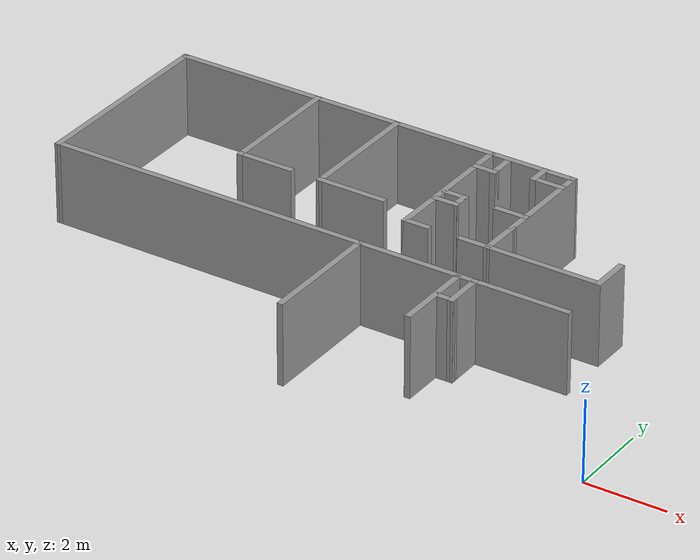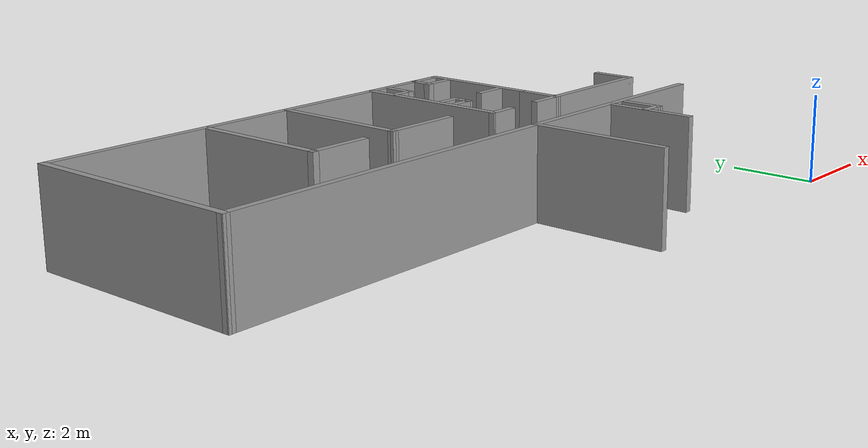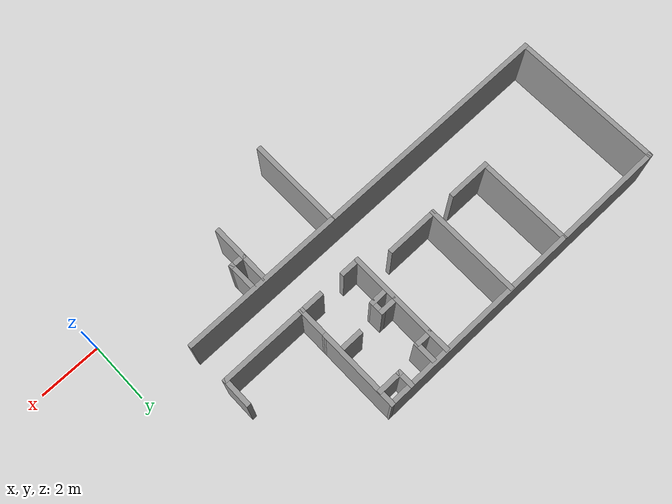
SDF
<sdf version="1.7">
 <model name="HQ">
  <link name="Wall_1">
   <pose>-9.81185 7.21089 0 0 -0 0.000157</pose>
   <visual name="Wall_1_Visual">
    <pose>0 0 1.25 0 -0 0</pose>
    <geometry><box><size>10.3981 0.15 2</size></box></geometry>
    <material>
     <script><uri>file://media/materials/scripts/gazebo.material</uri><name>Gazebo/Grey</name></script>
     <ambient>1 1 1 1</ambient>
     <shader type="pixel"/>
    </material>
    <meta><layer>0</layer></meta>
   </visual>
   <collision name="Wall_1_Collision">
    <pose>0 0 1.25 0 -0 0</pose>
    <geometry><box><size>10.3981 0.15 2</size></box></geometry>
    <surface>
     <friction>
      <ode><mu>1</mu><mu2>1</mu2><fdir1>0 0 0</fdir1><slip1>0</slip1><slip2>0</slip2></ode>
      <torsional>
       <coefficient>1</coefficient>
       <patch_radius>0</patch_radius>
       <surface_radius>0</surface_radius>
       <use_patch_radius>1</use_patch_radius>
       <ode><slip>0</slip></ode>
      </torsional>
     </friction>
     <bounce><restitution_coefficient>0</restitution_coefficient><threshold>1e+06</threshold></bounce>
     <contact>
      <collide_without_contact>0</collide_without_contact>
      <collide_without_contact_bitmask>1</collide_without_contact_bitmask>
      <collide_bitmask>1</collide_bitmask>
      <ode>
       <soft_cfm>0</soft_cfm>
       <soft_erp>0.2</soft_erp>
       <kp>1e+13</kp>
       <kd>1</kd>
       <max_vel>0.01</max_vel>
       <min_depth>0</min_depth>
      </ode>
      <bullet>
       <split_impulse>1</split_impulse>
       <split_impulse_penetration_threshold>-0.01</split_impulse_penetration_threshold>
       <soft_cfm>0</soft_cfm>
       <soft_erp>0.2</soft_erp>
       <kp>1e+13</kp>
       <kd>1</kd>
      </bullet>
     </contact>
    </surface>
   </collision>
  </link>
  <link name="Wall_100">
   <pose>-6.48912 5.25147 0 0 -0 3.14159</pose>
   <visual name="Wall_100_Visual">
    <pose>0 0 1.25 0 -0 0</pose>
    <geometry><box><size>0.657 0.15 2</size></box></geometry>
    <material>
     <script><uri>file://media/materials/scripts/gazebo.material</uri><name>Gazebo/Grey</name></script>
     <ambient>1 1 1 1</ambient>
     <shader type="pixel"/>
    </material>
    <meta><layer>0</layer></meta>
   </visual>
   <collision name="Wall_100_Collision">
    <pose>0 0 1.25 0 -0 0</pose>
    <geometry><box><size>0.657 0.15 2</size></box></geometry>
    <surface>
     <friction>
      <ode><mu>1</mu><mu2>1</mu2><fdir1>0 0 0</fdir1><slip1>0</slip1><slip2>0</slip2></ode>
      <torsional>
       <coefficient>1</coefficient>
       <patch_radius>0</patch_radius>
       <surface_radius>0</surface_radius>
       <use_patch_radius>1</use_patch_radius>
       <ode><slip>0</slip></ode>
      </torsional>
     </friction>
     <bounce><restitution_coefficient>0</restitution_coefficient><threshold>1e+06</threshold></bounce>
     <contact>
      <collide_without_contact>0</collide_without_contact>
      <collide_without_contact_bitmask>1</collide_without_contact_bitmask>
      <collide_bitmask>1</collide_bitmask>
      <ode>
       <soft_cfm>0</soft_cfm>
       <soft_erp>0.2</soft_erp>
       <kp>1e+13</kp>
       <kd>1</kd>
       <max_vel>0.01</max_vel>
       <min_depth>0</min_depth>
      </ode>
      <bullet>
       <split_impulse>1</split_impulse>
       <split_impulse_penetration_threshold>-0.01</split_impulse_penetration_threshold>
       <soft_cfm>0</soft_cfm>
       <soft_erp>0.2</soft_erp>
       <kp>1e+13</kp>
       <kd>1</kd>
      </bullet>
     </contact>
    </surface>
   </collision>
  </link>
  <link name="Wall_102">
   <pose>-6.23562 5.07647 0 0 0 -1.5708</pose>
   <visual name="Wall_102_Visual">
    <pose>0 0 1.25 0 -0 0</pose>
    <geometry><box><size>0.5 0.15 2</size></box></geometry>
    <material>
     <script><uri>file://media/materials/scripts/gazebo.material</uri><name>Gazebo/Grey</name></script>
     <ambient>1 1 1 1</ambient>
     <shader type="pixel"/>
    </material>
    <meta><layer>0</layer></meta>
   </visual>
   <collision name="Wall_102_Collision">
    <pose>0 0 1.25 0 -0 0</pose>
    <geometry><box><size>0.5 0.15 2</size></box></geometry>
    <surface>
     <friction>
      <ode><mu>1</mu><mu2>1</mu2><fdir1>0 0 0</fdir1><slip1>0</slip1><slip2>0</slip2></ode>
      <torsional>
       <coefficient>1</coefficient>
       <patch_radius>0</patch_radius>
       <surface_radius>0</surface_radius>
       <use_patch_radius>1</use_patch_radius>
       <ode><slip>0</slip></ode>
      </torsional>
     </friction>
     <bounce><restitution_coefficient>0</restitution_coefficient><threshold>1e+06</threshold></bounce>
     <contact>
      <collide_without_contact>0</collide_without_contact>
      <collide_without_contact_bitmask>1</collide_without_contact_bitmask>
      <collide_bitmask>1</collide_bitmask>
      <ode>
       <soft_cfm>0</soft_cfm>
       <soft_erp>0.2</soft_erp>
       <kp>1e+13</kp>
       <kd>1</kd>
       <max_vel>0.01</max_vel>
       <min_depth>0</min_depth>
      </ode>
      <bullet>
       <split_impulse>1</split_impulse>
       <split_impulse_penetration_threshold>-0.01</split_impulse_penetration_threshold>
       <soft_cfm>0</soft_cfm>
       <soft_erp>0.2</soft_erp>
       <kp>1e+13</kp>
       <kd>1</kd>
      </bullet>
     </contact>
    </surface>
   </collision>
  </link>
  <link name="Wall_103">
   <pose>-6.49487 4.89822 0 0 0 -3.12906</pose>
   <visual name="Wall_103_Visual">
    <pose>0 0 1.25 0 -0 0</pose>
    <geometry><box><size>0.668524 0.15 2</size></box></geometry>
    <material>
     <script><uri>file://media/materials/scripts/gazebo.material</uri><name>Gazebo/Grey</name></script>
     <ambient>1 1 1 1</ambient>
     <shader type="pixel"/>
    </material>
    <meta><layer>0</layer></meta>
   </visual>
   <collision name="Wall_103_Collision">
    <pose>0 0 1.25 0 -0 0</pose>
    <geometry><box><size>0.668524 0.15 2</size></box></geometry>
    <surface>
     <friction>
      <ode><mu>1</mu><mu2>1</mu2><fdir1>0 0 0</fdir1><slip1>0</slip1><slip2>0</slip2></ode>
      <torsional>
       <coefficient>1</coefficient>
       <patch_radius>0</patch_radius>
       <surface_radius>0</surface_radius>
       <use_patch_radius>1</use_patch_radius>
       <ode><slip>0</slip></ode>
      </torsional>
     </friction>
     <bounce><restitution_coefficient>0</restitution_coefficient><threshold>1e+06</threshold></bounce>
     <contact>
      <collide_without_contact>0</collide_without_contact>
      <collide_without_contact_bitmask>1</collide_without_contact_bitmask>
      <collide_bitmask>1</collide_bitmask>
      <ode>
       <soft_cfm>0</soft_cfm>
       <soft_erp>0.2</soft_erp>
       <kp>1e+13</kp>
       <kd>1</kd>
       <max_vel>0.01</max_vel>
       <min_depth>0</min_depth>
      </ode>
      <bullet>
       <split_impulse>1</split_impulse>
       <split_impulse_penetration_threshold>-0.01</split_impulse_penetration_threshold>
       <soft_cfm>0</soft_cfm>
       <soft_erp>0.2</soft_erp>
       <kp>1e+13</kp>
       <kd>1</kd>
      </bullet>
     </contact>
    </surface>
   </collision>
  </link>
  <link name="Wall_105">
   <pose>-6.52412 6.55097 0 0 -0 0</pose>
   <visual name="Wall_105_Visual">
    <pose>0 0 1.25 0 -0 0</pose>
    <geometry><box><size>0.61 0.15 2</size></box></geometry>
    <material>
     <script><uri>file://media/materials/scripts/gazebo.material</uri><name>Gazebo/Grey</name></script>
     <ambient>1 1 1 1</ambient>
     <shader type="pixel"/>
    </material>
    <meta><layer>0</layer></meta>
   </visual>
   <collision name="Wall_105_Collision">
    <pose>0 0 1.25 0 -0 0</pose>
    <geometry><box><size>0.61 0.15 2</size></box></geometry>
    <surface>
     <friction>
      <ode><mu>1</mu><mu2>1</mu2><fdir1>0 0 0</fdir1><slip1>0</slip1><slip2>0</slip2></ode>
      <torsional>
       <coefficient>1</coefficient>
       <patch_radius>0</patch_radius>
       <surface_radius>0</surface_radius>
       <use_patch_radius>1</use_patch_radius>
       <ode><slip>0</slip></ode>
      </torsional>
     </friction>
     <bounce><restitution_coefficient>0</restitution_coefficient><threshold>1e+06</threshold></bounce>
     <contact>
      <collide_without_contact>0</collide_without_contact>
      <collide_without_contact_bitmask>1</collide_without_contact_bitmask>
      <collide_bitmask>1</collide_bitmask>
      <ode>
       <soft_cfm>0</soft_cfm>
       <soft_erp>0.2</soft_erp>
       <kp>1e+13</kp>
       <kd>1</kd>
       <max_vel>0.01</max_vel>
       <min_depth>0</min_depth>
      </ode>
      <bullet>
       <split_impulse>1</split_impulse>
       <split_impulse_penetration_threshold>-0.01</split_impulse_penetration_threshold>
       <soft_cfm>0</soft_cfm>
       <soft_erp>0.2</soft_erp>
       <kp>1e+13</kp>
       <kd>1</kd>
      </bullet>
     </contact>
    </surface>
   </collision>
  </link>
  <link name="Wall_106">
   <pose>-6.29412 6.83847 0 0 -0 1.5708</pose>
   <visual name="Wall_106_Visual">
    <pose>0 0 1.25 0 -0 0</pose>
    <geometry><box><size>0.725115 0.15 2</size></box></geometry>
    <material>
     <script><uri>file://media/materials/scripts/gazebo.material</uri><name>Gazebo/Grey</name></script>
     <ambient>1 1 1 1</ambient>
     <shader type="pixel"/>
    </material>
    <meta><layer>0</layer></meta>
   </visual>
   <collision name="Wall_106_Collision">
    <pose>0 0 1.25 0 -0 0</pose>
    <geometry><box><size>0.725115 0.15 2</size></box></geometry>
    <surface>
     <friction>
      <ode><mu>1</mu><mu2>1</mu2><fdir1>0 0 0</fdir1><slip1>0</slip1><slip2>0</slip2></ode>
      <torsional>
       <coefficient>1</coefficient>
       <patch_radius>0</patch_radius>
       <surface_radius>0</surface_radius>
       <use_patch_radius>1</use_patch_radius>
       <ode><slip>0</slip></ode>
      </torsional>
     </friction>
     <bounce><restitution_coefficient>0</restitution_coefficient><threshold>1e+06</threshold></bounce>
     <contact>
      <collide_without_contact>0</collide_without_contact>
      <collide_without_contact_bitmask>1</collide_without_contact_bitmask>
      <collide_bitmask>1</collide_bitmask>
      <ode>
       <soft_cfm>0</soft_cfm>
       <soft_erp>0.2</soft_erp>
       <kp>1e+13</kp>
       <kd>1</kd>
       <max_vel>0.01</max_vel>
       <min_depth>0</min_depth>
      </ode>
      <bullet>
       <split_impulse>1</split_impulse>
       <split_impulse_penetration_threshold>-0.01</split_impulse_penetration_threshold>
       <soft_cfm>0</soft_cfm>
       <soft_erp>0.2</soft_erp>
       <kp>1e+13</kp>
       <kd>1</kd>
      </bullet>
     </contact>
    </surface>
   </collision>
  </link>
  <link name="Wall_108">
   <pose>-9.25537 5.68847 0 0 0 -1.57464</pose>
   <visual name="Wall_108_Visual">
    <pose>0 0 1.25 0 -0 0</pose>
    <geometry><box><size>3.14002 0.15 2</size></box></geometry>
    <material>
     <script><uri>file://media/materials/scripts/gazebo.material</uri><name>Gazebo/Grey</name></script>
     <ambient>1 1 1 1</ambient>
     <shader type="pixel"/>
    </material>
    <meta><layer>0</layer></meta>
   </visual>
   <collision name="Wall_108_Collision">
    <pose>0 0 1.25 0 -0 0</pose>
    <geometry><box><size>3.14002 0.15 2</size></box></geometry>
    <surface>
     <friction>
      <ode><mu>1</mu><mu2>1</mu2><fdir1>0 0 0</fdir1><slip1>0</slip1><slip2>0</slip2></ode>
      <torsional>
       <coefficient>1</coefficient>
       <patch_radius>0</patch_radius>
       <surface_radius>0</surface_radius>
       <use_patch_radius>1</use_patch_radius>
       <ode><slip>0</slip></ode>
      </torsional>
     </friction>
     <bounce><restitution_coefficient>0</restitution_coefficient><threshold>1e+06</threshold></bounce>
     <contact>
      <collide_without_contact>0</collide_without_contact>
      <collide_without_contact_bitmask>1</collide_without_contact_bitmask>
      <collide_bitmask>1</collide_bitmask>
      <ode>
       <soft_cfm>0</soft_cfm>
       <soft_erp>0.2</soft_erp>
       <kp>1e+13</kp>
       <kd>1</kd>
       <max_vel>0.01</max_vel>
       <min_depth>0</min_depth>
      </ode>
      <bullet>
       <split_impulse>1</split_impulse>
       <split_impulse_penetration_threshold>-0.01</split_impulse_penetration_threshold>
       <soft_cfm>0</soft_cfm>
       <soft_erp>0.2</soft_erp>
       <kp>1e+13</kp>
       <kd>1</kd>
      </bullet>
     </contact>
    </surface>
   </collision>
  </link>
  <link name="Wall_109">
   <pose>-8.46112 4.19347 0 0 -0 0</pose>
   <visual name="Wall_109_Visual">
    <pose>0 0 1.25 0 -0 0</pose>
    <geometry><box><size>1.75 0.15 2</size></box></geometry>
    <material>
     <script><uri>file://media/materials/scripts/gazebo.material</uri><name>Gazebo/Grey</name></script>
     <ambient>1 1 1 1</ambient>
     <shader type="pixel"/>
    </material>
    <meta><layer>0</layer></meta>
   </visual>
   <collision name="Wall_109_Collision">
    <pose>0 0 1.25 0 -0 0</pose>
    <geometry><box><size>1.75 0.15 2</size></box></geometry>
    <surface>
     <friction>
      <ode><mu>1</mu><mu2>1</mu2><fdir1>0 0 0</fdir1><slip1>0</slip1><slip2>0</slip2></ode>
      <torsional>
       <coefficient>1</coefficient>
       <patch_radius>0</patch_radius>
       <surface_radius>0</surface_radius>
       <use_patch_radius>1</use_patch_radius>
       <ode><slip>0</slip></ode>
      </torsional>
     </friction>
     <bounce><restitution_coefficient>0</restitution_coefficient><threshold>1e+06</threshold></bounce>
     <contact>
      <collide_without_contact>0</collide_without_contact>
      <collide_without_contact_bitmask>1</collide_without_contact_bitmask>
      <collide_bitmask>1</collide_bitmask>
      <ode>
       <soft_cfm>0</soft_cfm>
       <soft_erp>0.2</soft_erp>
       <kp>1e+13</kp>
       <kd>1</kd>
       <max_vel>0.01</max_vel>
       <min_depth>0</min_depth>
      </ode>
      <bullet>
       <split_impulse>1</split_impulse>
       <split_impulse_penetration_threshold>-0.01</split_impulse_penetration_threshold>
       <soft_cfm>0</soft_cfm>
       <soft_erp>0.2</soft_erp>
       <kp>1e+13</kp>
       <kd>1</kd>
      </bullet>
     </contact>
    </surface>
   </collision>
  </link>
  <link name="Wall_113">
   <pose>-10.7101 4.19347 0 0 -0 3.14159</pose>
   <visual name="Wall_113_Visual">
    <pose>0 0 1.25 0 -0 0</pose>
    <geometry><box><size>1.43805 0.15 2</size></box></geometry>
    <material>
     <script><uri>file://media/materials/scripts/gazebo.material</uri><name>Gazebo/Grey</name></script>
     <ambient>1 1 1 1</ambient>
     <shader type="pixel"/>
    </material>
    <meta><layer>0</layer></meta>
   </visual>
   <collision name="Wall_113_Collision">
    <pose>0 0 1.25 0 -0 0</pose>
    <geometry><box><size>1.43805 0.15 2</size></box></geometry>
    <surface>
     <friction>
      <ode><mu>1</mu><mu2>1</mu2><fdir1>0 0 0</fdir1><slip1>0</slip1><slip2>0</slip2></ode>
      <torsional>
       <coefficient>1</coefficient>
       <patch_radius>0</patch_radius>
       <surface_radius>0</surface_radius>
       <use_patch_radius>1</use_patch_radius>
       <ode><slip>0</slip></ode>
      </torsional>
     </friction>
     <bounce><restitution_coefficient>0</restitution_coefficient><threshold>1e+06</threshold></bounce>
     <contact>
      <collide_without_contact>0</collide_without_contact>
      <collide_without_contact_bitmask>1</collide_without_contact_bitmask>
      <collide_bitmask>1</collide_bitmask>
      <ode>
       <soft_cfm>0</soft_cfm>
       <soft_erp>0.2</soft_erp>
       <kp>1e+13</kp>
       <kd>1</kd>
       <max_vel>0.01</max_vel>
       <min_depth>0</min_depth>
      </ode>
      <bullet>
       <split_impulse>1</split_impulse>
       <split_impulse_penetration_threshold>-0.01</split_impulse_penetration_threshold>
       <soft_cfm>0</soft_cfm>
       <soft_erp>0.2</soft_erp>
       <kp>1e+13</kp>
       <kd>1</kd>
      </bullet>
     </contact>
    </surface>
   </collision>
  </link>
  <link name="Wall_114">
   <pose>-11.3541 5.69422 0 0 -0 1.5708</pose>
   <visual name="Wall_114_Visual">
    <pose>0 0 1.25 0 -0 0</pose>
    <geometry><box><size>3.1515 0.15 2</size></box></geometry>
    <material>
     <script><uri>file://media/materials/scripts/gazebo.material</uri><name>Gazebo/Grey</name></script>
     <ambient>1 1 1 1</ambient>
     <shader type="pixel"/>
    </material>
    <meta><layer>0</layer></meta>
   </visual>
   <collision name="Wall_114_Collision">
    <pose>0 0 1.25 0 -0 0</pose>
    <geometry><box><size>3.1515 0.15 2</size></box></geometry>
    <surface>
     <friction>
      <ode><mu>1</mu><mu2>1</mu2><fdir1>0 0 0</fdir1><slip1>0</slip1><slip2>0</slip2></ode>
      <torsional>
       <coefficient>1</coefficient>
       <patch_radius>0</patch_radius>
       <surface_radius>0</surface_radius>
       <use_patch_radius>1</use_patch_radius>
       <ode><slip>0</slip></ode>
      </torsional>
     </friction>
     <bounce><restitution_coefficient>0</restitution_coefficient><threshold>1e+06</threshold></bounce>
     <contact>
      <collide_without_contact>0</collide_without_contact>
      <collide_without_contact_bitmask>1</collide_without_contact_bitmask>
      <collide_bitmask>1</collide_bitmask>
      <ode>
       <soft_cfm>0</soft_cfm>
       <soft_erp>0.2</soft_erp>
       <kp>1e+13</kp>
       <kd>1</kd>
       <max_vel>0.01</max_vel>
       <min_depth>0</min_depth>
      </ode>
      <bullet>
       <split_impulse>1</split_impulse>
       <split_impulse_penetration_threshold>-0.01</split_impulse_penetration_threshold>
       <soft_cfm>0</soft_cfm>
       <soft_erp>0.2</soft_erp>
       <kp>1e+13</kp>
       <kd>1</kd>
      </bullet>
     </contact>
    </surface>
   </collision>
  </link>
  <link name="Wall_237">
   <pose>-5.40371 6.99084 0 0 0 -1.5708</pose>
   <visual name="Wall_237_Visual">
    <pose>0 0 1.25 0 -0 0</pose>
    <geometry><box><size>0.584783 0.15 2</size></box></geometry>
    <material>
     <script><uri>file://media/materials/scripts/gazebo.material</uri><name>Gazebo/Grey</name></script>
     <ambient>1 1 1 1</ambient>
     <shader type="pixel"/>
    </material>
    <meta><layer>0</layer></meta>
   </visual>
   <collision name="Wall_237_Collision">
    <pose>0 0 1.25 0 -0 0</pose>
    <geometry><box><size>0.584783 0.15 2</size></box></geometry>
    <surface>
     <friction>
      <ode><mu>1</mu><mu2>1</mu2><fdir1>0 0 0</fdir1><slip1>0</slip1><slip2>0</slip2></ode>
      <torsional>
       <coefficient>1</coefficient>
       <patch_radius>0</patch_radius>
       <surface_radius>0</surface_radius>
       <use_patch_radius>1</use_patch_radius>
       <ode><slip>0</slip></ode>
      </torsional>
     </friction>
     <bounce><restitution_coefficient>0</restitution_coefficient><threshold>1e+06</threshold></bounce>
     <contact>
      <collide_without_contact>0</collide_without_contact>
      <collide_without_contact_bitmask>1</collide_without_contact_bitmask>
      <collide_bitmask>1</collide_bitmask>
      <ode>
       <soft_cfm>0</soft_cfm>
       <soft_erp>0.2</soft_erp>
       <kp>1e+13</kp>
       <kd>1</kd>
       <max_vel>0.01</max_vel>
       <min_depth>0</min_depth>
      </ode>
      <bullet>
       <split_impulse>1</split_impulse>
       <split_impulse_penetration_threshold>-0.01</split_impulse_penetration_threshold>
       <soft_cfm>0</soft_cfm>
       <soft_erp>0.2</soft_erp>
       <kp>1e+13</kp>
       <kd>1</kd>
      </bullet>
     </contact>
    </surface>
   </collision>
  </link>
  <link name="Wall_238">
   <pose>-5.05589 6.77345 0 0 -0 0</pose>
   <visual name="Wall_238_Visual">
    <pose>0 0 1.25 0 -0 0</pose>
    <geometry><box><size>0.84587 0.15 2</size></box></geometry>
    <material>
     <script><uri>file://media/materials/scripts/gazebo.material</uri><name>Gazebo/Grey</name></script>
     <ambient>1 1 1 1</ambient>
     <shader type="pixel"/>
    </material>
    <meta><layer>0</layer></meta>
   </visual>
   <collision name="Wall_238_Collision">
    <pose>0 0 1.25 0 -0 0</pose>
    <geometry><box><size>0.84587 0.15 2</size></box></geometry>
    <surface>
     <friction>
      <ode><mu>1</mu><mu2>1</mu2><fdir1>0 0 0</fdir1><slip1>0</slip1><slip2>0</slip2></ode>
      <torsional>
       <coefficient>1</coefficient>
       <patch_radius>0</patch_radius>
       <surface_radius>0</surface_radius>
       <use_patch_radius>1</use_patch_radius>
       <ode><slip>0</slip></ode>
      </torsional>
     </friction>
     <bounce><restitution_coefficient>0</restitution_coefficient><threshold>1e+06</threshold></bounce>
     <contact>
      <collide_without_contact>0</collide_without_contact>
      <collide_without_contact_bitmask>1</collide_without_contact_bitmask>
      <collide_bitmask>1</collide_bitmask>
      <ode>
       <soft_cfm>0</soft_cfm>
       <soft_erp>0.2</soft_erp>
       <kp>1e+13</kp>
       <kd>1</kd>
       <max_vel>0.01</max_vel>
       <min_depth>0</min_depth>
      </ode>
      <bullet>
       <split_impulse>1</split_impulse>
       <split_impulse_penetration_threshold>-0.01</split_impulse_penetration_threshold>
       <soft_cfm>0</soft_cfm>
       <soft_erp>0.2</soft_erp>
       <kp>1e+13</kp>
       <kd>1</kd>
      </bullet>
     </contact>
    </surface>
   </collision>
  </link>
  <link name="Wall_3">
   <pose>-4.68613 5.95229 0 0 0 -1.56947</pose>
   <visual name="Wall_3_Visual">
    <pose>0 0 1.25 0 -0 0</pose>
    <geometry><box><size>2.66886 0.15 2</size></box></geometry>
    <material>
     <script><uri>file://media/materials/scripts/gazebo.material</uri><name>Gazebo/Grey</name></script>
     <ambient>1 1 1 1</ambient>
     <shader type="pixel"/>
    </material>
    <meta><layer>0</layer></meta>
   </visual>
   <collision name="Wall_3_Collision">
    <pose>0 0 1.25 0 -0 0</pose>
    <geometry><box><size>2.66886 0.15 2</size></box></geometry>
    <surface>
     <friction>
      <ode><mu>1</mu><mu2>1</mu2><fdir1>0 0 0</fdir1><slip1>0</slip1><slip2>0</slip2></ode>
      <torsional>
       <coefficient>1</coefficient>
       <patch_radius>0</patch_radius>
       <surface_radius>0</surface_radius>
       <use_patch_radius>1</use_patch_radius>
       <ode><slip>0</slip></ode>
      </torsional>
     </friction>
     <bounce><restitution_coefficient>0</restitution_coefficient><threshold>1e+06</threshold></bounce>
     <contact>
      <collide_without_contact>0</collide_without_contact>
      <collide_without_contact_bitmask>1</collide_without_contact_bitmask>
      <collide_bitmask>1</collide_bitmask>
      <ode>
       <soft_cfm>0</soft_cfm>
       <soft_erp>0.2</soft_erp>
       <kp>1e+13</kp>
       <kd>1</kd>
       <max_vel>0.01</max_vel>
       <min_depth>0</min_depth>
      </ode>
      <bullet>
       <split_impulse>1</split_impulse>
       <split_impulse_penetration_threshold>-0.01</split_impulse_penetration_threshold>
       <soft_cfm>0</soft_cfm>
       <soft_erp>0.2</soft_erp>
       <kp>1e+13</kp>
       <kd>1</kd>
      </bullet>
     </contact>
    </surface>
   </collision>
  </link>
  <link name="Wall_38">
   <pose>-14.9601 4.79068 0 0 -0 1.5708</pose>
   <visual name="Wall_38_Visual">
    <pose>0 0 1.25 0 -0 0</pose>
    <geometry><box><size>4.97729 0.15 2</size></box></geometry>
    <material>
     <script><uri>file://media/materials/scripts/gazebo.material</uri><name>Gazebo/Grey</name></script>
     <ambient>1 1 1 1</ambient>
     <shader type="pixel"/>
    </material>
    <meta><layer>0</layer></meta>
   </visual>
   <collision name="Wall_38_Collision">
    <pose>0 0 1.25 0 -0 0</pose>
    <geometry><box><size>4.97729 0.15 2</size></box></geometry>
    <surface>
     <friction>
      <ode><mu>1</mu><mu2>1</mu2><fdir1>0 0 0</fdir1><slip1>0</slip1><slip2>0</slip2></ode>
      <torsional>
       <coefficient>1</coefficient>
       <patch_radius>0</patch_radius>
       <surface_radius>0</surface_radius>
       <use_patch_radius>1</use_patch_radius>
       <ode><slip>0</slip></ode>
      </torsional>
     </friction>
     <bounce><restitution_coefficient>0</restitution_coefficient><threshold>1e+06</threshold></bounce>
     <contact>
      <collide_without_contact>0</collide_without_contact>
      <collide_without_contact_bitmask>1</collide_without_contact_bitmask>
      <collide_bitmask>1</collide_bitmask>
      <ode>
       <soft_cfm>0</soft_cfm>
       <soft_erp>0.2</soft_erp>
       <kp>1e+13</kp>
       <kd>1</kd>
       <max_vel>0.01</max_vel>
       <min_depth>0</min_depth>
      </ode>
      <bullet>
       <split_impulse>1</split_impulse>
       <split_impulse_penetration_threshold>-0.01</split_impulse_penetration_threshold>
       <soft_cfm>0</soft_cfm>
       <soft_erp>0.2</soft_erp>
       <kp>1e+13</kp>
       <kd>1</kd>
      </bullet>
     </contact>
    </surface>
   </collision>
  </link>
  <link name="Wall_40">
   <pose>-8.43119 2.39 0 0 -0 0.001983</pose>
   <visual name="Wall_40_Visual">
    <pose>0 0 1.25 0 -0 0</pose>
    <geometry><box><size>13.208 0.15 2</size></box></geometry>
    <material>
     <script><uri>file://media/materials/scripts/gazebo.material</uri><name>Gazebo/Grey</name></script>
     <ambient>1 1 1 1</ambient>
     <shader type="pixel"/>
    </material>
    <meta><layer>0</layer></meta>
   </visual>
   <collision name="Wall_40_Collision">
    <pose>0 0 1.25 0 -0 0</pose>
    <geometry><box><size>13.208 0.15 2</size></box></geometry>
    <surface>
     <friction>
      <ode><mu>1</mu><mu2>1</mu2><fdir1>0 0 0</fdir1><slip1>0</slip1><slip2>0</slip2></ode>
      <torsional>
       <coefficient>1</coefficient>
       <patch_radius>0</patch_radius>
       <surface_radius>0</surface_radius>
       <use_patch_radius>1</use_patch_radius>
       <ode><slip>0</slip></ode>
      </torsional>
     </friction>
     <bounce><restitution_coefficient>0</restitution_coefficient><threshold>1e+06</threshold></bounce>
     <contact>
      <collide_without_contact>0</collide_without_contact>
      <collide_without_contact_bitmask>1</collide_without_contact_bitmask>
      <collide_bitmask>1</collide_bitmask>
      <ode>
       <soft_cfm>0</soft_cfm>
       <soft_erp>0.2</soft_erp>
       <kp>1e+13</kp>
       <kd>1</kd>
       <max_vel>0.01</max_vel>
       <min_depth>0</min_depth>
      </ode>
      <bullet>
       <split_impulse>1</split_impulse>
       <split_impulse_penetration_threshold>-0.01</split_impulse_penetration_threshold>
       <soft_cfm>0</soft_cfm>
       <soft_erp>0.2</soft_erp>
       <kp>1e+13</kp>
       <kd>1</kd>
      </bullet>
     </contact>
    </surface>
   </collision>
  </link>
  <link name="Wall_62">
   <pose>-4.56884 1.40712 0 0 -0 1.5708</pose>
   <visual name="Wall_62_Visual">
    <pose>0 0 1.25 0 -0 0</pose>
    <geometry><box><size>2 0.15 2</size></box></geometry>
    <material>
     <script><uri>file://media/materials/scripts/gazebo.material</uri><name>Gazebo/Grey</name></script>
     <ambient>1 1 1 1</ambient>
     <shader type="pixel"/>
    </material>
    <meta><layer>0</layer></meta>
   </visual>
   <collision name="Wall_62_Collision">
    <pose>0 0 1.25 0 -0 0</pose>
    <geometry><box><size>2 0.15 2</size></box></geometry>
    <surface>
     <friction>
      <ode><mu>1</mu><mu2>1</mu2><fdir1>0 0 0</fdir1><slip1>0</slip1><slip2>0</slip2></ode>
      <torsional>
       <coefficient>1</coefficient>
       <patch_radius>0</patch_radius>
       <surface_radius>0</surface_radius>
       <use_patch_radius>1</use_patch_radius>
       <ode><slip>0</slip></ode>
      </torsional>
     </friction>
     <bounce><restitution_coefficient>0</restitution_coefficient><threshold>1e+06</threshold></bounce>
     <contact>
      <collide_without_contact>0</collide_without_contact>
      <collide_without_contact_bitmask>1</collide_without_contact_bitmask>
      <collide_bitmask>1</collide_bitmask>
      <ode>
       <soft_cfm>0</soft_cfm>
       <soft_erp>0.2</soft_erp>
       <kp>1e+13</kp>
       <kd>1</kd>
       <max_vel>0.01</max_vel>
       <min_depth>0</min_depth>
      </ode>
      <bullet>
       <split_impulse>1</split_impulse>
       <split_impulse_penetration_threshold>-0.01</split_impulse_penetration_threshold>
       <soft_cfm>0</soft_cfm>
       <soft_erp>0.2</soft_erp>
       <kp>1e+13</kp>
       <kd>1</kd>
      </bullet>
     </contact>
    </surface>
   </collision>
  </link>
  <link name="Wall_65">
   <pose>-4.16449 1.93864 0 0 0 -1.56109</pose>
   <visual name="Wall_65_Visual">
    <pose>0 0 1.25 0 -0 0</pose>
    <geometry><box><size>1.04582 0.15 2</size></box></geometry>
    <material>
     <script><uri>file://media/materials/scripts/gazebo.material</uri><name>Gazebo/Grey</name></script>
     <ambient>1 1 1 1</ambient>
     <shader type="pixel"/>
    </material>
    <meta><layer>0</layer></meta>
   </visual>
   <collision name="Wall_65_Collision">
    <pose>0 0 1.25 0 -0 0</pose>
    <geometry><box><size>1.04582 0.15 2</size></box></geometry>
    <surface>
     <friction>
      <ode><mu>1</mu><mu2>1</mu2><fdir1>0 0 0</fdir1><slip1>0</slip1><slip2>0</slip2></ode>
      <torsional>
       <coefficient>1</coefficient>
       <patch_radius>0</patch_radius>
       <surface_radius>0</surface_radius>
       <use_patch_radius>1</use_patch_radius>
       <ode><slip>0</slip></ode>
      </torsional>
     </friction>
     <bounce><restitution_coefficient>0</restitution_coefficient><threshold>1e+06</threshold></bounce>
     <contact>
      <collide_without_contact>0</collide_without_contact>
      <collide_without_contact_bitmask>1</collide_without_contact_bitmask>
      <collide_bitmask>1</collide_bitmask>
      <ode>
       <soft_cfm>0</soft_cfm>
       <soft_erp>0.2</soft_erp>
       <kp>1e+13</kp>
       <kd>1</kd>
       <max_vel>0.01</max_vel>
       <min_depth>0</min_depth>
      </ode>
      <bullet>
       <split_impulse>1</split_impulse>
       <split_impulse_penetration_threshold>-0.01</split_impulse_penetration_threshold>
       <soft_cfm>0</soft_cfm>
       <soft_erp>0.2</soft_erp>
       <kp>1e+13</kp>
       <kd>1</kd>
      </bullet>
     </contact>
    </surface>
   </collision>
  </link>
  <link name="Wall_66">
   <pose>-4.35145 1.49082 0 0 -0 3.14159</pose>
   <visual name="Wall_66_Visual">
    <pose>0 0 1.25 0 -0 0</pose>
    <geometry><box><size>0.532609 0.15 2</size></box></geometry>
    <material>
     <script><uri>file://media/materials/scripts/gazebo.material</uri><name>Gazebo/Grey</name></script>
     <ambient>1 1 1 1</ambient>
     <shader type="pixel"/>
    </material>
    <meta><layer>0</layer></meta>
   </visual>
   <collision name="Wall_66_Collision">
    <pose>0 0 1.25 0 -0 0</pose>
    <geometry><box><size>0.532609 0.15 2</size></box></geometry>
    <surface>
     <friction>
      <ode><mu>1</mu><mu2>1</mu2><fdir1>0 0 0</fdir1><slip1>0</slip1><slip2>0</slip2></ode>
      <torsional>
       <coefficient>1</coefficient>
       <patch_radius>0</patch_radius>
       <surface_radius>0</surface_radius>
       <use_patch_radius>1</use_patch_radius>
       <ode><slip>0</slip></ode>
      </torsional>
     </friction>
     <bounce><restitution_coefficient>0</restitution_coefficient><threshold>1e+06</threshold></bounce>
     <contact>
      <collide_without_contact>0</collide_without_contact>
      <collide_without_contact_bitmask>1</collide_without_contact_bitmask>
      <collide_bitmask>1</collide_bitmask>
      <ode>
       <soft_cfm>0</soft_cfm>
       <soft_erp>0.2</soft_erp>
       <kp>1e+13</kp>
       <kd>1</kd>
       <max_vel>0.01</max_vel>
       <min_depth>0</min_depth>
      </ode>
      <bullet>
       <split_impulse>1</split_impulse>
       <split_impulse_penetration_threshold>-0.01</split_impulse_penetration_threshold>
       <soft_cfm>0</soft_cfm>
       <soft_erp>0.2</soft_erp>
       <kp>1e+13</kp>
       <kd>1</kd>
      </bullet>
     </contact>
    </surface>
   </collision>
  </link>
  <link name="Wall_68">
   <pose>-7.06449 0.912555 0 0 0 -1.5708</pose>
   <visual name="Wall_68_Visual">
    <pose>0 0 1.25 0 -0 0</pose>
    <geometry><box><size>3.09783 0.15 2</size></box></geometry>
    <material>
     <script><uri>file://media/materials/scripts/gazebo.material</uri><name>Gazebo/Grey</name></script>
     <ambient>1 1 1 1</ambient>
     <shader type="pixel"/>
    </material>
    <meta><layer>0</layer></meta>
   </visual>
   <collision name="Wall_68_Collision">
    <pose>0 0 1.25 0 -0 0</pose>
    <geometry><box><size>3.09783 0.15 2</size></box></geometry>
    <surface>
     <friction>
      <ode><mu>1</mu><mu2>1</mu2><fdir1>0 0 0</fdir1><slip1>0</slip1><slip2>0</slip2></ode>
      <torsional>
       <coefficient>1</coefficient>
       <patch_radius>0</patch_radius>
       <surface_radius>0</surface_radius>
       <use_patch_radius>1</use_patch_radius>
       <ode><slip>0</slip></ode>
      </torsional>
     </friction>
     <bounce><restitution_coefficient>0</restitution_coefficient><threshold>1e+06</threshold></bounce>
     <contact>
      <collide_without_contact>0</collide_without_contact>
      <collide_without_contact_bitmask>1</collide_without_contact_bitmask>
      <collide_bitmask>1</collide_bitmask>
      <ode>
       <soft_cfm>0</soft_cfm>
       <soft_erp>0.2</soft_erp>
       <kp>1e+13</kp>
       <kd>1</kd>
       <max_vel>0.01</max_vel>
       <min_depth>0</min_depth>
      </ode>
      <bullet>
       <split_impulse>1</split_impulse>
       <split_impulse_penetration_threshold>-0.01</split_impulse_penetration_threshold>
       <soft_cfm>0</soft_cfm>
       <soft_erp>0.2</soft_erp>
       <kp>1e+13</kp>
       <kd>1</kd>
      </bullet>
     </contact>
    </surface>
   </collision>
  </link>
  <link name="Wall_79">
   <pose>-3.30987 3.74497 0 0 -0 3.14159</pose>
   <visual name="Wall_79_Visual">
    <pose>0 0 1.25 0 -0 0</pose>
    <geometry><box><size>2.8985 0.15 2</size></box></geometry>
    <material>
     <script><uri>file://media/materials/scripts/gazebo.material</uri><name>Gazebo/Grey</name></script>
     <ambient>1 1 1 1</ambient>
     <shader type="pixel"/>
    </material>
    <meta><layer>0</layer></meta>
   </visual>
   <collision name="Wall_79_Collision">
    <pose>0 0 1.25 0 -0 0</pose>
    <geometry><box><size>2.8985 0.15 2</size></box></geometry>
    <surface>
     <friction>
      <ode><mu>1</mu><mu2>1</mu2><fdir1>0 0 0</fdir1><slip1>0</slip1><slip2>0</slip2></ode>
      <torsional>
       <coefficient>1</coefficient>
       <patch_radius>0</patch_radius>
       <surface_radius>0</surface_radius>
       <use_patch_radius>1</use_patch_radius>
       <ode><slip>0</slip></ode>
      </torsional>
     </friction>
     <bounce><restitution_coefficient>0</restitution_coefficient><threshold>1e+06</threshold></bounce>
     <contact>
      <collide_without_contact>0</collide_without_contact>
      <collide_without_contact_bitmask>1</collide_without_contact_bitmask>
      <collide_bitmask>1</collide_bitmask>
      <ode>
       <soft_cfm>0</soft_cfm>
       <soft_erp>0.2</soft_erp>
       <kp>1e+13</kp>
       <kd>1</kd>
       <max_vel>0.01</max_vel>
       <min_depth>0</min_depth>
      </ode>
      <bullet>
       <split_impulse>1</split_impulse>
       <split_impulse_penetration_threshold>-0.01</split_impulse_penetration_threshold>
       <soft_cfm>0</soft_cfm>
       <soft_erp>0.2</soft_erp>
       <kp>1e+13</kp>
       <kd>1</kd>
      </bullet>
     </contact>
    </surface>
   </collision>
  </link>
  <link name="Wall_81">
   <pose>-4.68429 4.21892 0 0 -0 1.57115</pose>
   <visual name="Wall_81_Visual">
    <pose>0 0 1.25 0 -0 0</pose>
    <geometry><box><size>1.0979 0.15 2</size></box></geometry>
    <material>
     <script><uri>file://media/materials/scripts/gazebo.material</uri><name>Gazebo/Grey</name></script>
     <ambient>1 1 1 1</ambient>
     <shader type="pixel"/>
    </material>
    <meta><layer>0</layer></meta>
   </visual>
   <collision name="Wall_81_Collision">
    <pose>0 0 1.25 0 -0 0</pose>
    <geometry><box><size>1.0979 0.15 2</size></box></geometry>
    <surface>
     <friction>
      <ode><mu>1</mu><mu2>1</mu2><fdir1>0 0 0</fdir1><slip1>0</slip1><slip2>0</slip2></ode>
      <torsional>
       <coefficient>1</coefficient>
       <patch_radius>0</patch_radius>
       <surface_radius>0</surface_radius>
       <use_patch_radius>1</use_patch_radius>
       <ode><slip>0</slip></ode>
      </torsional>
     </friction>
     <bounce><restitution_coefficient>0</restitution_coefficient><threshold>1e+06</threshold></bounce>
     <contact>
      <collide_without_contact>0</collide_without_contact>
      <collide_without_contact_bitmask>1</collide_without_contact_bitmask>
      <collide_bitmask>1</collide_bitmask>
      <ode>
       <soft_cfm>0</soft_cfm>
       <soft_erp>0.2</soft_erp>
       <kp>1e+13</kp>
       <kd>1</kd>
       <max_vel>0.01</max_vel>
       <min_depth>0</min_depth>
      </ode>
      <bullet>
       <split_impulse>1</split_impulse>
       <split_impulse_penetration_threshold>-0.01</split_impulse_penetration_threshold>
       <soft_cfm>0</soft_cfm>
       <soft_erp>0.2</soft_erp>
       <kp>1e+13</kp>
       <kd>1</kd>
      </bullet>
     </contact>
    </surface>
   </collision>
  </link>
  <link name="Wall_83">
   <pose>-1.93562 4.16997 0 0 -0 1.5708</pose>
   <visual name="Wall_83_Visual">
    <pose>0 0 1.25 0 -0 0</pose>
    <geometry><box><size>1 0.15 2</size></box></geometry>
    <material>
     <script><uri>file://media/materials/scripts/gazebo.material</uri><name>Gazebo/Grey</name></script>
     <ambient>1 1 1 1</ambient>
     <shader type="pixel"/>
    </material>
    <meta><layer>0</layer></meta>
   </visual>
   <collision name="Wall_83_Collision">
    <pose>0 0 1.25 0 -0 0</pose>
    <geometry><box><size>1 0.15 2</size></box></geometry>
    <surface>
     <friction>
      <ode><mu>1</mu><mu2>1</mu2><fdir1>0 0 0</fdir1><slip1>0</slip1><slip2>0</slip2></ode>
      <torsional>
       <coefficient>1</coefficient>
       <patch_radius>0</patch_radius>
       <surface_radius>0</surface_radius>
       <use_patch_radius>1</use_patch_radius>
       <ode><slip>0</slip></ode>
      </torsional>
     </friction>
     <bounce><restitution_coefficient>0</restitution_coefficient><threshold>1e+06</threshold></bounce>
     <contact>
      <collide_without_contact>0</collide_without_contact>
      <collide_without_contact_bitmask>1</collide_without_contact_bitmask>
      <collide_bitmask>1</collide_bitmask>
      <ode>
       <soft_cfm>0</soft_cfm>
       <soft_erp>0.2</soft_erp>
       <kp>1e+13</kp>
       <kd>1</kd>
       <max_vel>0.01</max_vel>
       <min_depth>0</min_depth>
      </ode>
      <bullet>
       <split_impulse>1</split_impulse>
       <split_impulse_penetration_threshold>-0.01</split_impulse_penetration_threshold>
       <soft_cfm>0</soft_cfm>
       <soft_erp>0.2</soft_erp>
       <kp>1e+13</kp>
       <kd>1</kd>
      </bullet>
     </contact>
    </surface>
   </collision>
  </link>
  <link name="Wall_87">
   <pose>-6.76562 5.45847 0 0 -0 1.5708</pose>
   <visual name="Wall_87_Visual">
    <pose>0 0 1.25 0 -0 0</pose>
    <geometry><box><size>3.577 0.15 2</size></box></geometry>
    <material>
     <script><uri>file://media/materials/scripts/gazebo.material</uri><name>Gazebo/Grey</name></script>
     <ambient>1 1 1 1</ambient>
     <shader type="pixel"/>
    </material>
    <meta><layer>0</layer></meta>
   </visual>
   <collision name="Wall_87_Collision">
    <pose>0 0 1.25 0 -0 0</pose>
    <geometry><box><size>3.577 0.15 2</size></box></geometry>
    <surface>
     <friction>
      <ode><mu>1</mu><mu2>1</mu2><fdir1>0 0 0</fdir1><slip1>0</slip1><slip2>0</slip2></ode>
      <torsional>
       <coefficient>1</coefficient>
       <patch_radius>0</patch_radius>
       <surface_radius>0</surface_radius>
       <use_patch_radius>1</use_patch_radius>
       <ode><slip>0</slip></ode>
      </torsional>
     </friction>
     <bounce><restitution_coefficient>0</restitution_coefficient><threshold>1e+06</threshold></bounce>
     <contact>
      <collide_without_contact>0</collide_without_contact>
      <collide_without_contact_bitmask>1</collide_without_contact_bitmask>
      <collide_bitmask>1</collide_bitmask>
      <ode>
       <soft_cfm>0</soft_cfm>
       <soft_erp>0.2</soft_erp>
       <kp>1e+13</kp>
       <kd>1</kd>
       <max_vel>0.01</max_vel>
       <min_depth>0</min_depth>
      </ode>
      <bullet>
       <split_impulse>1</split_impulse>
       <split_impulse_penetration_threshold>-0.01</split_impulse_penetration_threshold>
       <soft_cfm>0</soft_cfm>
       <soft_erp>0.2</soft_erp>
       <kp>1e+13</kp>
       <kd>1</kd>
      </bullet>
     </contact>
    </surface>
   </collision>
  </link>
  <link name="Wall_89">
   <pose>-6.50112 3.74497 0 0 -0 0</pose>
   <visual name="Wall_89_Visual">
    <pose>0 0 1.25 0 -0 0</pose>
    <geometry><box><size>0.679125 0.15 2</size></box></geometry>
    <material>
     <script><uri>file://media/materials/scripts/gazebo.material</uri><name>Gazebo/Grey</name></script>
     <ambient>1 1 1 1</ambient>
     <shader type="pixel"/>
    </material>
    <meta><layer>0</layer></meta>
   </visual>
   <collision name="Wall_89_Collision">
    <pose>0 0 1.25 0 -0 0</pose>
    <geometry><box><size>0.679125 0.15 2</size></box></geometry>
    <surface>
     <friction>
      <ode><mu>1</mu><mu2>1</mu2><fdir1>0 0 0</fdir1><slip1>0</slip1><slip2>0</slip2></ode>
      <torsional>
       <coefficient>1</coefficient>
       <patch_radius>0</patch_radius>
       <surface_radius>0</surface_radius>
       <use_patch_radius>1</use_patch_radius>
       <ode><slip>0</slip></ode>
      </torsional>
     </friction>
     <bounce><restitution_coefficient>0</restitution_coefficient><threshold>1e+06</threshold></bounce>
     <contact>
      <collide_without_contact>0</collide_without_contact>
      <collide_without_contact_bitmask>1</collide_without_contact_bitmask>
      <collide_bitmask>1</collide_bitmask>
      <ode>
       <soft_cfm>0</soft_cfm>
       <soft_erp>0.2</soft_erp>
       <kp>1e+13</kp>
       <kd>1</kd>
       <max_vel>0.01</max_vel>
       <min_depth>0</min_depth>
      </ode>
      <bullet>
       <split_impulse>1</split_impulse>
       <split_impulse_penetration_threshold>-0.01</split_impulse_penetration_threshold>
       <soft_cfm>0</soft_cfm>
       <soft_erp>0.2</soft_erp>
       <kp>1e+13</kp>
       <kd>1</kd>
      </bullet>
     </contact>
    </surface>
   </collision>
  </link>
  <link name="Wall_91">
   <pose>-5.01762 3.74497 0 0 -0 3.14159</pose>
   <visual name="Wall_91_Visual">
    <pose>0 0 1.25 0 -0 0</pose>
    <geometry><box><size>0.817 0.15 2</size></box></geometry>
    <material>
     <script><uri>file://media/materials/scripts/gazebo.material</uri><name>Gazebo/Grey</name></script>
     <ambient>1 1 1 1</ambient>
     <shader type="pixel"/>
    </material>
    <meta><layer>0</layer></meta>
   </visual>
   <collision name="Wall_91_Collision">
    <pose>0 0 1.25 0 -0 0</pose>
    <geometry><box><size>0.817 0.15 2</size></box></geometry>
    <surface>
     <friction>
      <ode><mu>1</mu><mu2>1</mu2><fdir1>0 0 0</fdir1><slip1>0</slip1><slip2>0</slip2></ode>
      <torsional>
       <coefficient>1</coefficient>
       <patch_radius>0</patch_radius>
       <surface_radius>0</surface_radius>
       <use_patch_radius>1</use_patch_radius>
       <ode><slip>0</slip></ode>
      </torsional>
     </friction>
     <bounce><restitution_coefficient>0</restitution_coefficient><threshold>1e+06</threshold></bounce>
     <contact>
      <collide_without_contact>0</collide_without_contact>
      <collide_without_contact_bitmask>1</collide_without_contact_bitmask>
      <collide_bitmask>1</collide_bitmask>
      <ode>
       <soft_cfm>0</soft_cfm>
       <soft_erp>0.2</soft_erp>
       <kp>1e+13</kp>
       <kd>1</kd>
       <max_vel>0.01</max_vel>
       <min_depth>0</min_depth>
      </ode>
      <bullet>
       <split_impulse>1</split_impulse>
       <split_impulse_penetration_threshold>-0.01</split_impulse_penetration_threshold>
       <soft_cfm>0</soft_cfm>
       <soft_erp>0.2</soft_erp>
       <kp>1e+13</kp>
       <kd>1</kd>
      </bullet>
     </contact>
    </surface>
   </collision>
  </link>
  <link name="Wall_94">
   <pose>-5.04062 5.25147 0 0 -0 3.14159</pose>
   <visual name="Wall_94_Visual">
    <pose>0 0 1.25 0 -0 0</pose>
    <geometry><box><size>0.840096 0.15 2</size></box></geometry>
    <material>
     <script><uri>file://media/materials/scripts/gazebo.material</uri><name>Gazebo/Grey</name></script>
     <ambient>1 1 1 1</ambient>
     <shader type="pixel"/>
    </material>
    <meta><layer>0</layer></meta>
   </visual>
   <collision name="Wall_94_Collision">
    <pose>0 0 1.25 0 -0 0</pose>
    <geometry><box><size>0.840096 0.15 2</size></box></geometry>
    <surface>
     <friction>
      <ode><mu>1</mu><mu2>1</mu2><fdir1>0 0 0</fdir1><slip1>0</slip1><slip2>0</slip2></ode>
      <torsional>
       <coefficient>1</coefficient>
       <patch_radius>0</patch_radius>
       <surface_radius>0</surface_radius>
       <use_patch_radius>1</use_patch_radius>
       <ode><slip>0</slip></ode>
      </torsional>
     </friction>
     <bounce><restitution_coefficient>0</restitution_coefficient><threshold>1e+06</threshold></bounce>
     <contact>
      <collide_without_contact>0</collide_without_contact>
      <collide_without_contact_bitmask>1</collide_without_contact_bitmask>
      <collide_bitmask>1</collide_bitmask>
      <ode>
       <soft_cfm>0</soft_cfm>
       <soft_erp>0.2</soft_erp>
       <kp>1e+13</kp>
       <kd>1</kd>
       <max_vel>0.01</max_vel>
       <min_depth>0</min_depth>
      </ode>
      <bullet>
       <split_impulse>1</split_impulse>
       <split_impulse_penetration_threshold>-0.01</split_impulse_penetration_threshold>
       <soft_cfm>0</soft_cfm>
       <soft_erp>0.2</soft_erp>
       <kp>1e+13</kp>
       <kd>1</kd>
      </bullet>
     </contact>
    </surface>
   </collision>
  </link>
  <static>1</static>
 </model>
</sdf>
